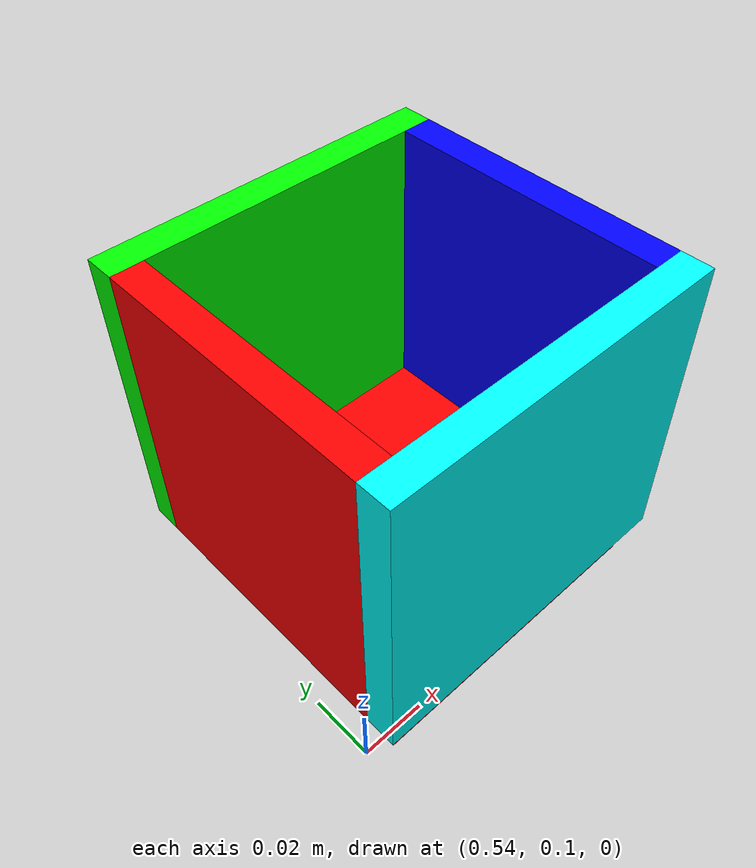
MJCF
<mujoco model="square_box">
    <worldbody>
        <body name="square_box" pos="0.6 0.15 0.0" quat="1 0 0 0">
            <geom pos="0 0 0" size="0.05 0.05 0.01" rgba="1 0 0 1.0" type="box" mass="1.0" />
            <geom pos="0.05 0 0.055" size="0.005 0.045 0.05" rgba="0 0 1 1.0" type="box" />
            <geom pos="0 0.05 0.055" size="0.055 0.005 0.05" rgba="0 1 0 1.0" type="box" />
            <geom pos="-0.05 0 0.055" size="0.005 0.045 0.05" rgba="1 0 0 1.0" type="box" />
            <geom pos="0 -0.05 0.055" size="0.055 0.005 0.05" rgba="0 1 1 1.0" type="box" />
            <joint name="box_joint" type="free"/>
        </body>
    </worldbody>
</mujoco>
